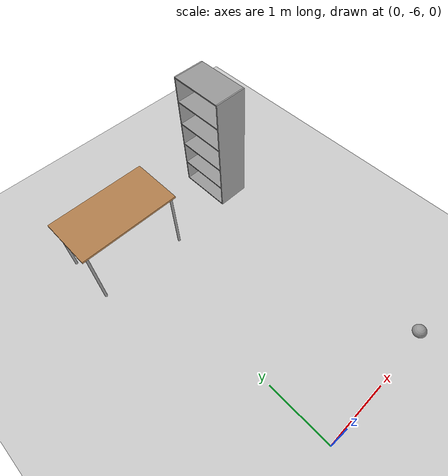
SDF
<sdf version="1.6">
 <world name="default">
  <model name="ground_plane">
   <static>1</static>
   <link name="link">
    <collision name="collision">
     <geometry><plane><normal>0 0 1</normal><size>100 100</size></plane></geometry>
     <surface>
      <contact><collide_bitmask>65535</collide_bitmask></contact>
      <friction><ode><mu>100</mu><mu2>50</mu2></ode></friction>
     </surface>
    </collision>
    <visual name="visual">
     <cast_shadows>0</cast_shadows>
     <geometry><plane><normal>0 0 1</normal><size>100 100</size></plane></geometry>
     <material>
      <script><uri>file://media/materials/scripts/gazebo.material</uri><name>Gazebo/Grey</name></script>
     </material>
    </visual>
   </link>
  </model>
  <model name="table">
   <static>1</static>
   <link name="link">
    <collision name="surface">
     <pose>0 0 1 0 -0 0</pose>
     <geometry><box><size>1.5 0.8 0.03</size></box></geometry>
     <surface><friction><ode><mu>0.6</mu><mu2>0.6</mu2></ode></friction></surface>
    </collision>
    <visual name="visual1">
     <pose>0 0 1 0 -0 0</pose>
     <geometry><box><size>1.5 0.8 0.03</size></box></geometry>
     <material>
      <script><uri>file://media/materials/scripts/gazebo.material</uri><name>Gazebo/Wood</name></script>
     </material>
    </visual>
    <collision name="front_left_leg">
     <pose>0.68 0.38 0.5 0 -0 0</pose>
     <geometry><cylinder><radius>0.02</radius><length>1</length></cylinder></geometry>
    </collision>
    <visual name="front_left_leg">
     <pose>0.68 0.38 0.5 0 -0 0</pose>
     <geometry><cylinder><radius>0.02</radius><length>1</length></cylinder></geometry>
     <material>
      <script><uri>file://media/materials/scripts/gazebo.material</uri><name>Gazebo/Grey</name></script>
     </material>
    </visual>
    <collision name="front_right_leg">
     <pose>0.68 -0.38 0.5 0 -0 0</pose>
     <geometry><cylinder><radius>0.02</radius><length>1</length></cylinder></geometry>
    </collision>
    <visual name="front_right_leg">
     <pose>0.68 -0.38 0.5 0 -0 0</pose>
     <geometry><cylinder><radius>0.02</radius><length>1</length></cylinder></geometry>
     <material>
      <script><uri>file://media/materials/scripts/gazebo.material</uri><name>Gazebo/Grey</name></script>
     </material>
    </visual>
    <collision name="back_right_leg">
     <pose>-0.68 -0.38 0.5 0 -0 0</pose>
     <geometry><cylinder><radius>0.02</radius><length>1</length></cylinder></geometry>
    </collision>
    <visual name="back_right_leg">
     <pose>-0.68 -0.38 0.5 0 -0 0</pose>
     <geometry><cylinder><radius>0.02</radius><length>1</length></cylinder></geometry>
     <material>
      <script><uri>file://media/materials/scripts/gazebo.material</uri><name>Gazebo/Grey</name></script>
     </material>
    </visual>
    <collision name="back_left_leg">
     <pose>-0.68 0.38 0.5 0 -0 0</pose>
     <geometry><cylinder><radius>0.02</radius><length>1</length></cylinder></geometry>
    </collision>
    <visual name="back_left_leg">
     <pose>-0.68 0.38 0.5 0 -0 0</pose>
     <geometry><cylinder><radius>0.02</radius><length>1</length></cylinder></geometry>
     <material>
      <script><uri>file://media/materials/scripts/gazebo.material</uri><name>Gazebo/Grey</name></script>
     </material>
    </visual>
   </link>
   <pose>-0.050123 -2.10867 0 0 -0 0</pose>
  </model>
  <model name="bookshelf_0">
   <link name="link_0">
    <pose>0 0.41 0.005 0 -0 0</pose>
    <inertial>
     <mass>1</mass>
     <inertia>
      <ixx>0.166667</ixx>
      <ixy>0</ixy>
      <ixz>0</ixz>
      <iyy>0.166667</iyy>
      <iyz>0</iyz>
      <izz>0.166667</izz>
     </inertia>
    </inertial>
    <visual name="visual">
     <geometry><box><size>0.5 0.02 2</size></box></geometry>
     <material>
      <lighting>1</lighting>
      <script><uri>file://media/materials/scripts/gazebo.material</uri><name>Gazebo/Grey</name></script>
      <shader type="pixel"><normal_map>__default__</normal_map></shader>
      <ambient>0.3 0.3 0.3 1</ambient>
      <diffuse>0.7 0.7 0.7 1</diffuse>
      <specular>0.01 0.01 0.01 1</specular>
      <emissive>0 0 0 1</emissive>
     </material>
    </visual>
    <collision name="collision">
     <geometry><box><size>0.5 0.02 2</size></box></geometry>
     <surface>
      <friction>
       <ode><mu>1</mu><mu2>1</mu2><fdir1>0 0 0</fdir1><slip1>0</slip1><slip2>0</slip2></ode>
       <torsional>
        <coefficient>1</coefficient>
        <patch_radius>0</patch_radius>
        <surface_radius>0</surface_radius>
        <use_patch_radius>1</use_patch_radius>
        <ode><slip>0</slip></ode>
       </torsional>
      </friction>
      <bounce><restitution_coefficient>0</restitution_coefficient><threshold>1e+06</threshold></bounce>
      <contact>
       <collide_without_contact>0</collide_without_contact>
       <collide_without_contact_bitmask>1</collide_without_contact_bitmask>
       <collide_bitmask>1</collide_bitmask>
       <ode>
        <soft_cfm>0</soft_cfm>
        <soft_erp>0.2</soft_erp>
        <kp>1e+13</kp>
        <kd>1</kd>
        <max_vel>0.01</max_vel>
        <min_depth>0</min_depth>
       </ode>
       <bullet>
        <split_impulse>1</split_impulse>
        <split_impulse_penetration_threshold>-0.01</split_impulse_penetration_threshold>
        <soft_cfm>0</soft_cfm>
        <soft_erp>0.2</soft_erp>
        <kp>1e+13</kp>
        <kd>1</kd>
       </bullet>
      </contact>
     </surface>
    </collision>
   </link>
   <link name="link_0_clone">
    <pose>0 -0.41 0.005 0 -0 0</pose>
    <inertial>
     <mass>1</mass>
     <inertia>
      <ixx>0.166667</ixx>
      <ixy>0</ixy>
      <ixz>0</ixz>
      <iyy>0.166667</iyy>
      <iyz>0</iyz>
      <izz>0.166667</izz>
     </inertia>
    </inertial>
    <visual name="visual">
     <geometry><box><size>0.5 0.02 2</size></box></geometry>
     <material>
      <lighting>1</lighting>
      <script><uri>file://media/materials/scripts/gazebo.material</uri><name>Gazebo/Grey</name></script>
      <shader type="pixel"><normal_map>__default__</normal_map></shader>
      <ambient>0.3 0.3 0.3 1</ambient>
      <diffuse>0.7 0.7 0.7 1</diffuse>
      <specular>0.01 0.01 0.01 1</specular>
      <emissive>0 0 0 1</emissive>
     </material>
    </visual>
    <collision name="collision">
     <geometry><box><size>0.5 0.02 2</size></box></geometry>
     <surface>
      <friction>
       <ode><mu>1</mu><mu2>1</mu2><fdir1>0 0 0</fdir1><slip1>0</slip1><slip2>0</slip2></ode>
       <torsional>
        <coefficient>1</coefficient>
        <patch_radius>0</patch_radius>
        <surface_radius>0</surface_radius>
        <use_patch_radius>1</use_patch_radius>
        <ode><slip>0</slip></ode>
       </torsional>
      </friction>
      <bounce><restitution_coefficient>0</restitution_coefficient><threshold>1e+06</threshold></bounce>
      <contact>
       <collide_without_contact>0</collide_without_contact>
       <collide_without_contact_bitmask>1</collide_without_contact_bitmask>
       <collide_bitmask>1</collide_bitmask>
       <ode>
        <soft_cfm>0</soft_cfm>
        <soft_erp>0.2</soft_erp>
        <kp>1e+13</kp>
        <kd>1</kd>
        <max_vel>0.01</max_vel>
        <min_depth>0</min_depth>
       </ode>
       <bullet>
        <split_impulse>1</split_impulse>
        <split_impulse_penetration_threshold>-0.01</split_impulse_penetration_threshold>
        <soft_cfm>0</soft_cfm>
        <soft_erp>0.2</soft_erp>
        <kp>1e+13</kp>
        <kd>1</kd>
       </bullet>
      </contact>
     </surface>
    </collision>
   </link>
   <link name="link_1">
    <pose>0 0 -0.985 0 -0 0</pose>
    <inertial>
     <mass>1</mass>
     <inertia>
      <ixx>0.166667</ixx>
      <ixy>0</ixy>
      <ixz>0</ixz>
      <iyy>0.166667</iyy>
      <iyz>0</iyz>
      <izz>0.166667</izz>
     </inertia>
     <pose>0 0 0.01 0 -0 0</pose>
    </inertial>
    <visual name="visual">
     <geometry><box><size>0.5 0.8 0.02</size></box></geometry>
     <material>
      <lighting>1</lighting>
      <script><uri>file://media/materials/scripts/gazebo.material</uri><name>Gazebo/Grey</name></script>
      <shader type="pixel"><normal_map>__default__</normal_map></shader>
      <ambient>0.3 0.3 0.3 1</ambient>
      <diffuse>0.7 0.7 0.7 1</diffuse>
      <specular>0.01 0.01 0.01 1</specular>
      <emissive>0 0 0 1</emissive>
     </material>
    </visual>
    <collision name="collision">
     <geometry><box><size>0.5 0.8 0.02</size></box></geometry>
     <surface>
      <friction>
       <ode><mu>1</mu><mu2>1</mu2><fdir1>0 0 0</fdir1><slip1>0</slip1><slip2>0</slip2></ode>
       <torsional>
        <coefficient>1</coefficient>
        <patch_radius>0</patch_radius>
        <surface_radius>0</surface_radius>
        <use_patch_radius>1</use_patch_radius>
        <ode><slip>0</slip></ode>
       </torsional>
      </friction>
      <bounce><restitution_coefficient>0</restitution_coefficient><threshold>1e+06</threshold></bounce>
      <contact>
       <collide_without_contact>0</collide_without_contact>
       <collide_without_contact_bitmask>1</collide_without_contact_bitmask>
       <collide_bitmask>1</collide_bitmask>
       <ode>
        <soft_cfm>0</soft_cfm>
        <soft_erp>0.2</soft_erp>
        <kp>1e+13</kp>
        <kd>1</kd>
        <max_vel>0.01</max_vel>
        <min_depth>0</min_depth>
       </ode>
       <bullet>
        <split_impulse>1</split_impulse>
        <split_impulse_penetration_threshold>-0.01</split_impulse_penetration_threshold>
        <soft_cfm>0</soft_cfm>
        <soft_erp>0.2</soft_erp>
        <kp>1e+13</kp>
        <kd>1</kd>
       </bullet>
      </contact>
     </surface>
    </collision>
   </link>
   <link name="link_1_clone">
    <pose>0 0 0.195 0 -0 0</pose>
    <inertial>
     <mass>1</mass>
     <inertia>
      <ixx>0.166667</ixx>
      <ixy>0</ixy>
      <ixz>0</ixz>
      <iyy>0.166667</iyy>
      <iyz>0</iyz>
      <izz>0.166667</izz>
     </inertia>
     <pose>0 0 0.01 0 -0 0</pose>
    </inertial>
    <visual name="visual">
     <geometry><box><size>0.5 0.8 0.02</size></box></geometry>
     <material>
      <lighting>1</lighting>
      <script><uri>file://media/materials/scripts/gazebo.material</uri><name>Gazebo/Grey</name></script>
      <shader type="pixel"><normal_map>__default__</normal_map></shader>
      <ambient>0.3 0.3 0.3 1</ambient>
      <diffuse>0.7 0.7 0.7 1</diffuse>
      <specular>0.01 0.01 0.01 1</specular>
      <emissive>0 0 0 1</emissive>
     </material>
    </visual>
    <collision name="collision">
     <geometry><box><size>0.5 0.8 0.02</size></box></geometry>
     <surface>
      <friction>
       <ode><mu>1</mu><mu2>1</mu2><fdir1>0 0 0</fdir1><slip1>0</slip1><slip2>0</slip2></ode>
       <torsional>
        <coefficient>1</coefficient>
        <patch_radius>0</patch_radius>
        <surface_radius>0</surface_radius>
        <use_patch_radius>1</use_patch_radius>
        <ode><slip>0</slip></ode>
       </torsional>
      </friction>
      <bounce><restitution_coefficient>0</restitution_coefficient><threshold>1e+06</threshold></bounce>
      <contact>
       <collide_without_contact>0</collide_without_contact>
       <collide_without_contact_bitmask>1</collide_without_contact_bitmask>
       <collide_bitmask>1</collide_bitmask>
       <ode>
        <soft_cfm>0</soft_cfm>
        <soft_erp>0.2</soft_erp>
        <kp>1e+13</kp>
        <kd>1</kd>
        <max_vel>0.01</max_vel>
        <min_depth>0</min_depth>
       </ode>
       <bullet>
        <split_impulse>1</split_impulse>
        <split_impulse_penetration_threshold>-0.01</split_impulse_penetration_threshold>
        <soft_cfm>0</soft_cfm>
        <soft_erp>0.2</soft_erp>
        <kp>1e+13</kp>
        <kd>1</kd>
       </bullet>
      </contact>
     </surface>
    </collision>
   </link>
   <link name="link_1_clone_0">
    <pose>0 0 -0.205 0 -0 0</pose>
    <inertial>
     <mass>1</mass>
     <inertia>
      <ixx>0.166667</ixx>
      <ixy>0</ixy>
      <ixz>0</ixz>
      <iyy>0.166667</iyy>
      <iyz>0</iyz>
      <izz>0.166667</izz>
     </inertia>
     <pose>0 0 0.01 0 -0 0</pose>
    </inertial>
    <visual name="visual">
     <geometry><box><size>0.5 0.8 0.02</size></box></geometry>
     <material>
      <lighting>1</lighting>
      <script><uri>file://media/materials/scripts/gazebo.material</uri><name>Gazebo/Grey</name></script>
      <shader type="pixel"><normal_map>__default__</normal_map></shader>
      <ambient>0.3 0.3 0.3 1</ambient>
      <diffuse>0.7 0.7 0.7 1</diffuse>
      <specular>0.01 0.01 0.01 1</specular>
      <emissive>0 0 0 1</emissive>
     </material>
    </visual>
    <collision name="collision">
     <geometry><box><size>0.5 0.8 0.02</size></box></geometry>
     <surface>
      <friction>
       <ode><mu>1</mu><mu2>1</mu2><fdir1>0 0 0</fdir1><slip1>0</slip1><slip2>0</slip2></ode>
       <torsional>
        <coefficient>1</coefficient>
        <patch_radius>0</patch_radius>
        <surface_radius>0</surface_radius>
        <use_patch_radius>1</use_patch_radius>
        <ode><slip>0</slip></ode>
       </torsional>
      </friction>
      <bounce><restitution_coefficient>0</restitution_coefficient><threshold>1e+06</threshold></bounce>
      <contact>
       <collide_without_contact>0</collide_without_contact>
       <collide_without_contact_bitmask>1</collide_without_contact_bitmask>
       <collide_bitmask>1</collide_bitmask>
       <ode>
        <soft_cfm>0</soft_cfm>
        <soft_erp>0.2</soft_erp>
        <kp>1e+13</kp>
        <kd>1</kd>
        <max_vel>0.01</max_vel>
        <min_depth>0</min_depth>
       </ode>
       <bullet>
        <split_impulse>1</split_impulse>
        <split_impulse_penetration_threshold>-0.01</split_impulse_penetration_threshold>
        <soft_cfm>0</soft_cfm>
        <soft_erp>0.2</soft_erp>
        <kp>1e+13</kp>
        <kd>1</kd>
       </bullet>
      </contact>
     </surface>
    </collision>
   </link>
   <link name="link_1_clone_1">
    <pose>0 0 -0.605 0 -0 0</pose>
    <inertial>
     <mass>1</mass>
     <inertia>
      <ixx>0.166667</ixx>
      <ixy>0</ixy>
      <ixz>0</ixz>
      <iyy>0.166667</iyy>
      <iyz>0</iyz>
      <izz>0.166667</izz>
     </inertia>
     <pose>0 0 0.01 0 -0 0</pose>
    </inertial>
    <visual name="visual">
     <geometry><box><size>0.5 0.8 0.02</size></box></geometry>
     <material>
      <lighting>1</lighting>
      <script><uri>file://media/materials/scripts/gazebo.material</uri><name>Gazebo/Grey</name></script>
      <shader type="pixel"><normal_map>__default__</normal_map></shader>
      <ambient>0.3 0.3 0.3 1</ambient>
      <diffuse>0.7 0.7 0.7 1</diffuse>
      <specular>0.01 0.01 0.01 1</specular>
      <emissive>0 0 0 1</emissive>
     </material>
    </visual>
    <collision name="collision">
     <geometry><box><size>0.5 0.8 0.02</size></box></geometry>
     <surface>
      <friction>
       <ode><mu>1</mu><mu2>1</mu2><fdir1>0 0 0</fdir1><slip1>0</slip1><slip2>0</slip2></ode>
       <torsional>
        <coefficient>1</coefficient>
        <patch_radius>0</patch_radius>
        <surface_radius>0</surface_radius>
        <use_patch_radius>1</use_patch_radius>
        <ode><slip>0</slip></ode>
       </torsional>
      </friction>
      <bounce><restitution_coefficient>0</restitution_coefficient><threshold>1e+06</threshold></bounce>
      <contact>
       <collide_without_contact>0</collide_without_contact>
       <collide_without_contact_bitmask>1</collide_without_contact_bitmask>
       <collide_bitmask>1</collide_bitmask>
       <ode>
        <soft_cfm>0</soft_cfm>
        <soft_erp>0.2</soft_erp>
        <kp>1e+13</kp>
        <kd>1</kd>
        <max_vel>0.01</max_vel>
        <min_depth>0</min_depth>
       </ode>
       <bullet>
        <split_impulse>1</split_impulse>
        <split_impulse_penetration_threshold>-0.01</split_impulse_penetration_threshold>
        <soft_cfm>0</soft_cfm>
        <soft_erp>0.2</soft_erp>
        <kp>1e+13</kp>
        <kd>1</kd>
       </bullet>
      </contact>
     </surface>
    </collision>
   </link>
   <link name="link_1_clone_2">
    <pose>0 0 0.595 0 -0 0</pose>
    <inertial>
     <mass>1</mass>
     <inertia>
      <ixx>0.166667</ixx>
      <ixy>0</ixy>
      <ixz>0</ixz>
      <iyy>0.166667</iyy>
      <iyz>0</iyz>
      <izz>0.166667</izz>
     </inertia>
     <pose>0 0 0.01 0 -0 0</pose>
    </inertial>
    <visual name="visual">
     <geometry><box><size>0.5 0.8 0.02</size></box></geometry>
     <material>
      <lighting>1</lighting>
      <script><uri>file://media/materials/scripts/gazebo.material</uri><name>Gazebo/Grey</name></script>
      <shader type="pixel"><normal_map>__default__</normal_map></shader>
      <ambient>0.3 0.3 0.3 1</ambient>
      <diffuse>0.7 0.7 0.7 1</diffuse>
      <specular>0.01 0.01 0.01 1</specular>
      <emissive>0 0 0 1</emissive>
     </material>
    </visual>
    <collision name="collision">
     <geometry><box><size>0.5 0.8 0.02</size></box></geometry>
     <surface>
      <friction>
       <ode><mu>1</mu><mu2>1</mu2><fdir1>0 0 0</fdir1><slip1>0</slip1><slip2>0</slip2></ode>
       <torsional>
        <coefficient>1</coefficient>
        <patch_radius>0</patch_radius>
        <surface_radius>0</surface_radius>
        <use_patch_radius>1</use_patch_radius>
        <ode><slip>0</slip></ode>
       </torsional>
      </friction>
      <bounce><restitution_coefficient>0</restitution_coefficient><threshold>1e+06</threshold></bounce>
      <contact>
       <collide_without_contact>0</collide_without_contact>
       <collide_without_contact_bitmask>1</collide_without_contact_bitmask>
       <collide_bitmask>1</collide_bitmask>
       <ode>
        <soft_cfm>0</soft_cfm>
        <soft_erp>0.2</soft_erp>
        <kp>1e+13</kp>
        <kd>1</kd>
        <max_vel>0.01</max_vel>
        <min_depth>0</min_depth>
       </ode>
       <bullet>
        <split_impulse>1</split_impulse>
        <split_impulse_penetration_threshold>-0.01</split_impulse_penetration_threshold>
        <soft_cfm>0</soft_cfm>
        <soft_erp>0.2</soft_erp>
        <kp>1e+13</kp>
        <kd>1</kd>
       </bullet>
      </contact>
     </surface>
    </collision>
   </link>
   <link name="link_1_clone_3">
    <pose>0 0 0.995 0 -0 0</pose>
    <inertial>
     <mass>1</mass>
     <inertia>
      <ixx>0.166667</ixx>
      <ixy>0</ixy>
      <ixz>0</ixz>
      <iyy>0.166667</iyy>
      <iyz>0</iyz>
      <izz>0.166667</izz>
     </inertia>
     <pose>0 0 0.01 0 -0 0</pose>
    </inertial>
    <visual name="visual">
     <geometry><box><size>0.5 0.8 0.02</size></box></geometry>
     <material>
      <lighting>1</lighting>
      <script><uri>file://media/materials/scripts/gazebo.material</uri><name>Gazebo/Grey</name></script>
      <shader type="pixel"><normal_map>__default__</normal_map></shader>
      <ambient>0.3 0.3 0.3 1</ambient>
      <diffuse>0.7 0.7 0.7 1</diffuse>
      <specular>0.01 0.01 0.01 1</specular>
      <emissive>0 0 0 1</emissive>
     </material>
    </visual>
    <collision name="collision">
     <geometry><box><size>0.5 0.8 0.02</size></box></geometry>
     <surface>
      <friction>
       <ode><mu>1</mu><mu2>1</mu2><fdir1>0 0 0</fdir1><slip1>0</slip1><slip2>0</slip2></ode>
       <torsional>
        <coefficient>1</coefficient>
        <patch_radius>0</patch_radius>
        <surface_radius>0</surface_radius>
        <use_patch_radius>1</use_patch_radius>
        <ode><slip>0</slip></ode>
       </torsional>
      </friction>
      <bounce><restitution_coefficient>0</restitution_coefficient><threshold>1e+06</threshold></bounce>
      <contact>
       <collide_without_contact>0</collide_without_contact>
       <collide_without_contact_bitmask>1</collide_without_contact_bitmask>
       <collide_bitmask>1</collide_bitmask>
       <ode>
        <soft_cfm>0</soft_cfm>
        <soft_erp>0.2</soft_erp>
        <kp>1e+13</kp>
        <kd>1</kd>
        <max_vel>0.01</max_vel>
        <min_depth>0</min_depth>
       </ode>
       <bullet>
        <split_impulse>1</split_impulse>
        <split_impulse_penetration_threshold>-0.01</split_impulse_penetration_threshold>
        <soft_cfm>0</soft_cfm>
        <soft_erp>0.2</soft_erp>
        <kp>1e+13</kp>
        <kd>1</kd>
       </bullet>
      </contact>
     </surface>
    </collision>
   </link>
   <joint name="link_0_JOINT_10" type="fixed">
    <parent>link_0</parent>
    <child>link_1_clone_2</child>
    <physics>
     <ode><limit><cfm>0</cfm><erp>0.2</erp></limit><suspension><cfm>0</cfm><erp>0.2</erp></suspension></ode>
    </physics>
   </joint>
   <joint name="link_0_JOINT_12" type="fixed">
    <parent>link_0</parent>
    <child>link_1_clone_3</child>
    <physics>
     <ode><limit><cfm>0</cfm><erp>0.2</erp></limit><suspension><cfm>0</cfm><erp>0.2</erp></suspension></ode>
    </physics>
   </joint>
   <joint name="link_0_JOINT_4" type="fixed">
    <parent>link_0</parent>
    <child>link_1_clone_1</child>
    <pose>0 0 0 -0.07 0 0</pose>
    <physics>
     <ode><limit><cfm>0</cfm><erp>0.2</erp></limit><suspension><cfm>0</cfm><erp>0.2</erp></suspension></ode>
    </physics>
   </joint>
   <joint name="link_0_JOINT_6" type="fixed">
    <parent>link_0</parent>
    <child>link_1_clone_0</child>
    <physics>
     <ode><limit><cfm>0</cfm><erp>0.2</erp></limit><suspension><cfm>0</cfm><erp>0.2</erp></suspension></ode>
    </physics>
   </joint>
   <joint name="link_0_JOINT_8" type="fixed">
    <parent>link_0</parent>
    <child>link_1_clone</child>
    <physics>
     <ode><limit><cfm>0</cfm><erp>0.2</erp></limit><suspension><cfm>0</cfm><erp>0.2</erp></suspension></ode>
    </physics>
   </joint>
   <joint name="link_0_clone_JOINT_11" type="fixed">
    <parent>link_0_clone</parent>
    <child>link_1_clone_3</child>
    <physics>
     <ode><limit><cfm>0</cfm><erp>0.2</erp></limit><suspension><cfm>0</cfm><erp>0.2</erp></suspension></ode>
    </physics>
   </joint>
   <joint name="link_0_clone_JOINT_3" type="fixed">
    <parent>link_0_clone</parent>
    <child>link_1_clone_1</child>
    <physics>
     <ode><limit><cfm>0</cfm><erp>0.2</erp></limit><suspension><cfm>0</cfm><erp>0.2</erp></suspension></ode>
    </physics>
   </joint>
   <joint name="link_0_clone_JOINT_5" type="revolute">
    <parent>link_0_clone</parent>
    <child>link_1_clone_0</child>
    <axis>
     <xyz>1 0 0</xyz>
     <use_parent_model_frame>0</use_parent_model_frame>
     <limit>
      <lower>-1.79769e+308</lower>
      <upper>1.79769e+308</upper>
      <effort>-1</effort>
      <velocity>-1</velocity>
     </limit>
     <dynamics>
      <spring_reference>0</spring_reference>
      <spring_stiffness>0</spring_stiffness>
      <damping>0</damping>
     </dynamics>
    </axis>
    <physics>
     <ode><limit><cfm>0</cfm><erp>0.2</erp></limit><suspension><cfm>0</cfm><erp>0.2</erp></suspension></ode>
    </physics>
   </joint>
   <joint name="link_0_clone_JOINT_7" type="fixed">
    <parent>link_0_clone</parent>
    <child>link_1_clone</child>
    <physics>
     <ode><limit><cfm>0</cfm><erp>0.2</erp></limit><suspension><cfm>0</cfm><erp>0.2</erp></suspension></ode>
    </physics>
   </joint>
   <joint name="link_0_clone_JOINT_9" type="fixed">
    <parent>link_0_clone</parent>
    <child>link_1_clone_2</child>
    <physics>
     <ode><limit><cfm>0</cfm><erp>0.2</erp></limit><suspension><cfm>0</cfm><erp>0.2</erp></suspension></ode>
    </physics>
   </joint>
   <joint name="link_1_JOINT_0" type="fixed">
    <parent>link_1</parent>
    <child>link_0</child>
    <physics>
     <ode><limit><cfm>0</cfm><erp>0.2</erp></limit><suspension><cfm>0</cfm><erp>0.2</erp></suspension></ode>
    </physics>
   </joint>
   <joint name="link_1_JOINT_1" type="fixed">
    <parent>link_1</parent>
    <child>link_0_clone</child>
    <pose>0 0 0 0 -0.01 0</pose>
    <physics>
     <ode><limit><cfm>0</cfm><erp>0.2</erp></limit><suspension><cfm>0</cfm><erp>0.2</erp></suspension></ode>
    </physics>
   </joint>
   <static>0</static>
   <pose>1.83674 -2.03132 0.994991 0 -1e-06 0.003819</pose>
  </model>
  <model name="my_ball_0">
   <link name="link_0">
    <inertial>
     <mass>1</mass>
     <inertia><ixx>0.1</ixx><ixy>0</ixy><ixz>0</ixz><iyy>0.1</iyy><iyz>0</iyz><izz>0.1</izz></inertia>
    </inertial>
    <visual name="visual">
     <geometry><sphere><radius>0.1</radius></sphere></geometry>
     <material>
      <lighting>1</lighting>
      <script><uri>file://media/materials/scripts/gazebo.material</uri><name>Gazebo/Grey</name></script>
      <shader type="pixel"><normal_map>__default__</normal_map></shader>
      <ambient>1 1 1 1</ambient>
      <diffuse>1 1 1 1</diffuse>
      <specular>1 1 1 1</specular>
      <emissive>1 1 1 1</emissive>
     </material>
    </visual>
    <collision name="collision">
     <geometry><sphere><radius>0.1</radius></sphere></geometry>
     <surface>
      <friction>
       <ode><mu>1</mu><mu2>1</mu2><fdir1>0 0 0</fdir1><slip1>0</slip1><slip2>0</slip2></ode>
       <torsional>
        <coefficient>1</coefficient>
        <patch_radius>0</patch_radius>
        <surface_radius>0</surface_radius>
        <use_patch_radius>1</use_patch_radius>
        <ode><slip>0</slip></ode>
       </torsional>
      </friction>
      <bounce><restitution_coefficient>0</restitution_coefficient><threshold>1e+06</threshold></bounce>
      <contact>
       <collide_without_contact>0</collide_without_contact>
       <collide_without_contact_bitmask>1</collide_without_contact_bitmask>
       <collide_bitmask>1</collide_bitmask>
       <ode>
        <soft_cfm>0</soft_cfm>
        <soft_erp>0.2</soft_erp>
        <kp>1e+13</kp>
        <kd>1</kd>
        <max_vel>0.01</max_vel>
        <min_depth>0</min_depth>
       </ode>
       <bullet>
        <split_impulse>1</split_impulse>
        <split_impulse_penetration_threshold>-0.01</split_impulse_penetration_threshold>
        <soft_cfm>0</soft_cfm>
        <soft_erp>0.2</soft_erp>
        <kp>1e+13</kp>
        <kd>1</kd>
       </bullet>
      </contact>
     </surface>
    </collision>
   </link>
   <static>0</static>
   <pose>1.97908 -5.93962 0 0 -0 0</pose>
  </model>
 </world>
</sdf>
